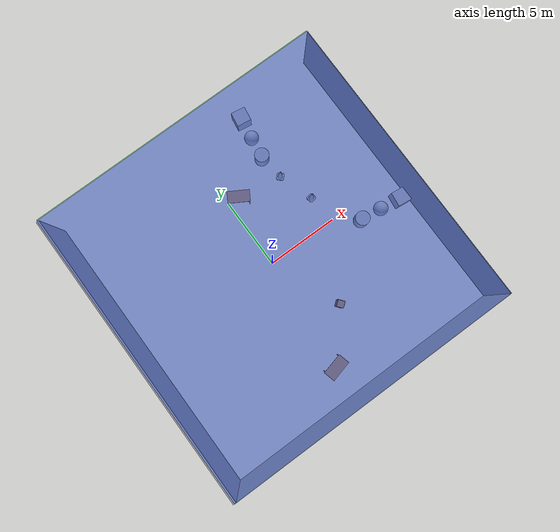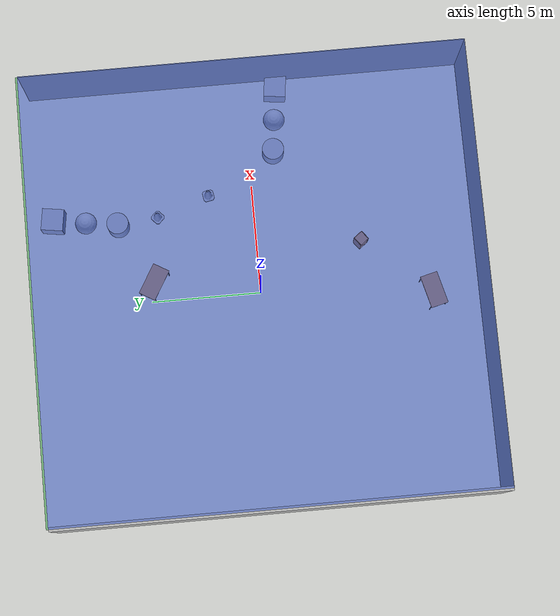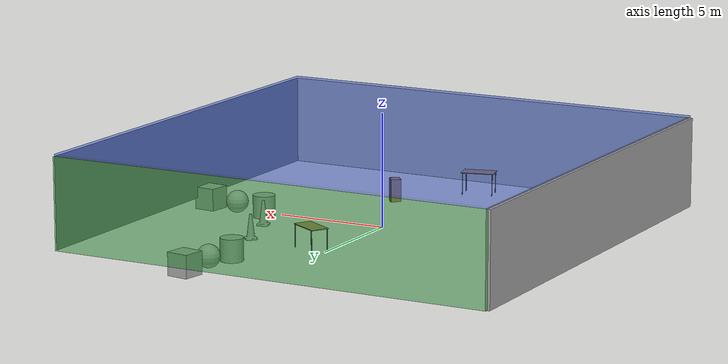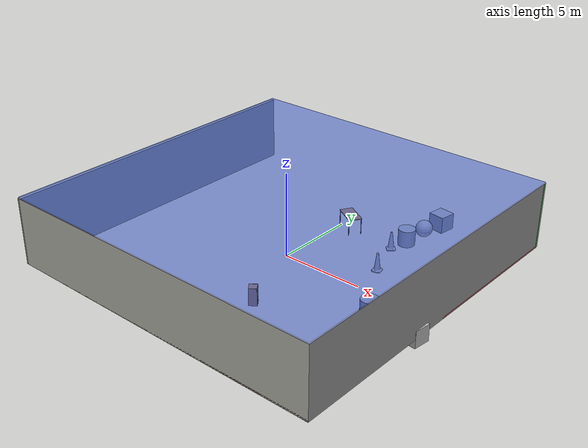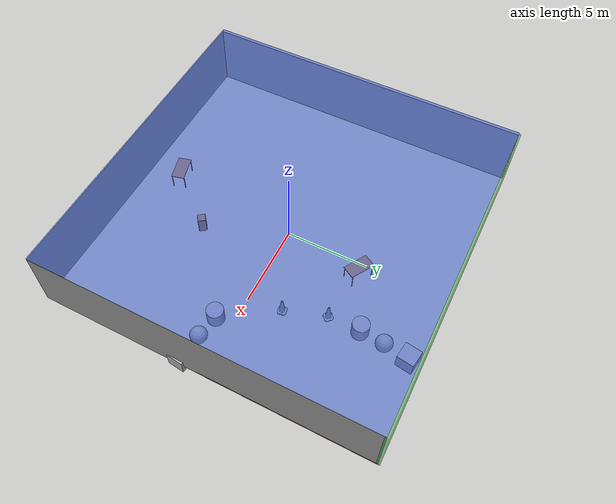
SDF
<sdf version="1.4">
 <world name="default">
  <physics type="ode">
   <max_step_size>0.001</max_step_size>
   <real_time_factor>1</real_time_factor>
   <real_time_update_rate>1000</real_time_update_rate>
   <gravity>0 0 -9.8</gravity>
  </physics>
  <scene><ambient>0.4 0.4 0.4 1</ambient><background>0.7 0.7 0.7 1</background><shadows>1</shadows></scene>
  <model name="Surrounding">
   <static>1</static>
   <link name="Ceiling">
    <collision name="Ceiling_Collision"><geometry><box><size>20 20 0.1</size></box></geometry></collision>
    <visual name="Ceiling_Visual">
     <geometry><box><size>20 20 0.1</size></box></geometry>
     <material>
      <script><uri>file://media/materials/scripts/gazebo.material</uri><name>Gazebo/BlueTransparent</name></script>
     </material>
    </visual>
    <pose>0 0 4.05 0 0 0</pose>
   </link>
   <link name="Wall_South">
    <collision name="Wall_South_Collision">
     <geometry><box><size>20 0 4</size></box></geometry>
     <pose>0 0 2 0 -0 0</pose>
    </collision>
    <visual name="Wall_South_Visual">
     <pose>0 0 2 0 -0 0</pose>
     <geometry><box><size>20 0 4</size></box></geometry>
     <material>
      <script><uri>file://media/materials/scripts/gazebo.material</uri><name>Gazebo/PaintedWall</name></script>
     </material>
    </visual>
    <velocity_decay><linear>0</linear><angular>0</angular></velocity_decay>
    <pose>0 -10 0 0 -0 0</pose>
   </link>
   <link name="Wall_East">
    <collision name="Wall_21_Collision">
     <geometry><box><size>20 0 4</size></box></geometry>
     <pose>0 0 2 0 -0 0</pose>
    </collision>
    <visual name="Wall_21_Visual">
     <pose>0 0 2 0 -0 0</pose>
     <geometry><box><size>20 0 4</size></box></geometry>
     <material>
      <script><uri>file://media/materials/scripts/gazebo.material</uri><name>Gazebo/GreyGradientSky</name></script>
     </material>
    </visual>
    <velocity_decay><linear>0</linear><angular>0</angular></velocity_decay>
    <pose>10 0 0 0 -0 1.5708</pose>
   </link>
   <link name="Wall_North">
    <collision name="Wall_22_Collision">
     <geometry><box><size>20 0.2 4</size></box></geometry>
     <pose>0 0 2 0 -0 0</pose>
    </collision>
    <visual name="Wall_22_Visual">
     <pose>0 0 2 0 -0 0</pose>
     <geometry><box><size>20 0.2 4</size></box></geometry>
     <material>
      <script><uri>file://media/materials/scripts/gazebo.material</uri><name>Gazebo/GreenTransparent</name></script>
     </material>
    </visual>
    <velocity_decay><linear>0</linear><angular>0</angular></velocity_decay>
    <pose>0 10 0 0 -0 0</pose>
   </link>
   <link name="Wall_West">
    <collision name="Wall_23_Collision">
     <geometry><box><size>20 0.2 4</size></box></geometry>
     <pose>0 0 2 0 -0 0</pose>
    </collision>
    <visual name="Wall_23_Visual">
     <pose>0 0 2 0 -0 0</pose>
     <geometry><box><size>20 0.2 4</size></box></geometry>
     <material>
      <script><uri>file://media/materials/scripts/gazebo.material</uri><name>Gazebo/CloudySky</name></script>
     </material>
    </visual>
    <velocity_decay><linear>0</linear><angular>0</angular></velocity_decay>
    <pose>-10 0 0 0 0 -1.5708</pose>
   </link>
   <link name="Ground_link">
    <collision name="collision">
     <pose>0 0 .05 0 -0 0</pose>
     <geometry><box><size>20 20 0.1</size></box></geometry>
    </collision>
    <visual name="visual">
     <pose>0 0 .05 0 -0 0</pose>
     <geometry><box><size>20 20 0.1</size></box></geometry>
     <material>
      <script><uri>file://media/materials/scripts/gazebo.material</uri><name>Gazebo/RedTransparent</name></script>
     </material>
    </visual>
   </link>
   <static>1</static>
  </model>
  <spherical_coordinates>
   <surface_model>EARTH_WGS84</surface_model>
   <latitude_deg>0</latitude_deg>
   <longitude_deg>0</longitude_deg>
   <elevation>0</elevation>
   <heading_deg>0</heading_deg>
  </spherical_coordinates>
  <light name="lightball_0" type="diffuse">
   <diffuse>0.8 0.8 0.8 1</diffuse>
   <specular>0.2 0.2 0.2 1</specular>
   <attenuation>
    <range>100</range>
    <constant>0.7</constant>
    <linear>0.01</linear>
    <quadratic>0.001</quadratic>
   </attenuation>
   <direction>-0.5 0.1 -0.9</direction>
   <pose>-3.74440221816 -7.63131538404 3.69181231283 0 0 0</pose>
  </light>
  <light name="lightball_1" type="diffuse">
   <diffuse>0.8 0.8 0.8 1</diffuse>
   <specular>0.2 0.2 0.2 1</specular>
   <attenuation>
    <range>100</range>
    <constant>0.7</constant>
    <linear>0.01</linear>
    <quadratic>0.001</quadratic>
   </attenuation>
   <direction>-0.5 0.1 -0.9</direction>
   <pose>-2.86989542638 -8.35243402407 2.24217319753 0 0 0</pose>
  </light>
  <light name="lightball_2" type="diffuse">
   <diffuse>0.8 0.8 0.8 1</diffuse>
   <specular>0.2 0.2 0.2 1</specular>
   <attenuation>
    <range>100</range>
    <constant>0.7</constant>
    <linear>0.01</linear>
    <quadratic>0.001</quadratic>
   </attenuation>
   <direction>-0.5 0.1 -0.9</direction>
   <pose>-0.00154601806068 -2.79396793922 1.25808165015 0 0 0</pose>
  </light>
  <light name="lightball_3" type="diffuse">
   <diffuse>0.8 0.8 0.8 1</diffuse>
   <specular>0.2 0.2 0.2 1</specular>
   <attenuation>
    <range>100</range>
    <constant>0.7</constant>
    <linear>0.01</linear>
    <quadratic>0.001</quadratic>
   </attenuation>
   <direction>-0.5 0.1 -0.9</direction>
   <pose>-5.35886670836 -2.93471315478 1.37691145811 0 0 0</pose>
  </light>
  <light name="lightball_4" type="diffuse">
   <diffuse>0.8 0.8 0.8 1</diffuse>
   <specular>0.2 0.2 0.2 1</specular>
   <attenuation>
    <range>100</range>
    <constant>0.7</constant>
    <linear>0.01</linear>
    <quadratic>0.001</quadratic>
   </attenuation>
   <direction>-0.5 0.1 -0.9</direction>
   <pose>1.21554565357 -6.33525970996 3.44236235513 0 0 0</pose>
  </light>
  <light name="lightball_5" type="diffuse">
   <diffuse>0.8 0.8 0.8 1</diffuse>
   <specular>0.2 0.2 0.2 1</specular>
   <attenuation>
    <range>100</range>
    <constant>0.7</constant>
    <linear>0.01</linear>
    <quadratic>0.001</quadratic>
   </attenuation>
   <direction>-0.5 0.1 -0.9</direction>
   <pose>4.90557560096 -0.857444279194 0.556697296791 0 0 0</pose>
  </light>
  <light name="lightball_6" type="diffuse">
   <diffuse>0.8 0.8 0.8 1</diffuse>
   <specular>0.2 0.2 0.2 1</specular>
   <attenuation>
    <range>100</range>
    <constant>0.7</constant>
    <linear>0.01</linear>
    <quadratic>0.001</quadratic>
   </attenuation>
   <direction>-0.5 0.1 -0.9</direction>
   <pose>-7.50888018202 -6.06314054696 1.55481309772 0 0 0</pose>
  </light>
  <light name="lightball_7" type="diffuse">
   <diffuse>0.8 0.8 0.8 1</diffuse>
   <specular>0.2 0.2 0.2 1</specular>
   <attenuation>
    <range>100</range>
    <constant>0.7</constant>
    <linear>0.01</linear>
    <quadratic>0.001</quadratic>
   </attenuation>
   <direction>-0.5 0.1 -0.9</direction>
   <pose>-2.21414060321 -0.303067941639 2.96090491581 0 0 0</pose>
  </light>
  <include><uri>model://table</uri><pose>-0.704476448342 -7.8374623654 0 0 0 0.250568004762</pose></include>
  <include><uri>model://cabinet</uri><pose>1.94185033336 -4.76862688072 0 0 0 0.651083635547</pose></include>
  <include><uri>model://table</uri><pose>0.767798233222 4.80730435803 0 0 0 2.61155440909</pose></include>
  <include>
   <uri>model://construction_cone</uri>
   <pose>4.73876528268 2.03428722751 0 0 0 0.180114154102</pose>
  </include>
  <include>
   <uri>model://construction_cone</uri>
   <pose>3.92190916798 4.45029797035 0 0 0 0.77065862802</pose>
  </include>
  <include>
   <uri>model://textured_shapes</uri>
   <pose>3.94586451964 7.78743247765 0 0 0 2.99588558801</pose>
  </include>
  <include>
   <uri>model://textured_shapes</uri>
   <pose>8.08630128861 -1.31439619824 0 0 0 1.45453833599</pose>
  </include>
 </world>
</sdf>

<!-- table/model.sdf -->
<sdf version="1.5">
  <model name="table">
    <static>true</static>
    <link name="link">
      <collision name="surface">
        <pose>0 0 1.0 0 0 0</pose>
        <geometry>
          <box>
            <size>1.5 0.8 0.03</size>
          </box>
        </geometry>
        <surface>
          <friction>
            <ode>
              <mu>0.6</mu>
              <mu2>0.6</mu2>
            </ode>
          </friction>
        </surface>
      </collision>
      <visual name="visual1">
        <pose>0 0 1.0 0 0 0</pose>
        <geometry>
          <box>
            <size>1.5 0.8 0.03</size>
          </box>
        </geometry>
        <material>
          <script>
            <uri>model://media/materials/scripts/gazebo.material</uri>
            <name>Gazebo/Wood</name>
          </script>
        </material>
      </visual>
      <collision name="front_left_leg">
        <pose>0.68 0.38 0.5 0 0 0</pose>
        <geometry>
          <cylinder>
            <radius>0.02</radius>
            <length>1.0</length>
          </cylinder>
        </geometry>
      </collision>
      <visual name="front_left_leg">
        <pose>0.68 0.38 0.5 0 0 0</pose>
        <geometry>
          <cylinder>
            <radius>0.02</radius>
            <length>1.0</length>
          </cylinder>
        </geometry>
        <material>
          <script>
            <uri>model://media/materials/scripts/gazebo.material</uri>
            <name>Gazebo/Grey</name>
          </script>
        </material>
      </visual>
      <collision name="front_right_leg">
        <pose>0.68 -0.38 0.5 0 0 0</pose>
        <geometry>
          <cylinder>
            <radius>0.02</radius>
            <length>1.0</length>
          </cylinder>
        </geometry>
      </collision>
      <visual name="front_right_leg">
        <pose>0.68 -0.38 0.5 0 0 0</pose>
        <geometry>
          <cylinder>
            <radius>0.02</radius>
            <length>1.0</length>
          </cylinder>
        </geometry>
        <material>
          <script>
            <uri>model://media/materials/scripts/gazebo.material</uri>
            <name>Gazebo/Grey</name>
          </script>
        </material>
      </visual>
      <collision name="back_right_leg">
        <pose>-0.68 -0.38 0.5 0 0 0</pose>
        <geometry>
          <cylinder>
            <radius>0.02</radius>
            <length>1.0</length>
          </cylinder>
        </geometry>
      </collision>
      <visual name="back_right_leg">
        <pose>-0.68 -0.38 0.5 0 0 0</pose>
        <geometry>
          <cylinder>
            <radius>0.02</radius>
            <length>1.0</length>
          </cylinder>
        </geometry>
        <material>
          <script>
            <uri>model://media/materials/scripts/gazebo.material</uri>
            <name>Gazebo/Grey</name>
          </script>
        </material>
      </visual>
      <collision name="back_left_leg">
        <pose>-0.68 0.38 0.5 0 0 0</pose>
        <geometry>
          <cylinder>
            <radius>0.02</radius>
            <length>1.0</length>
          </cylinder>
        </geometry>
      </collision>
      <visual name="back_left_leg">
        <pose>-0.68 0.38 0.5 0 0 0</pose>
        <geometry>
          <cylinder>
            <radius>0.02</radius>
            <length>1.0</length>
          </cylinder>
        </geometry>
        <material>
          <script>
            <uri>model://media/materials/scripts/gazebo.material</uri>
            <name>Gazebo/Grey</name>
          </script>
        </material>
      </visual>
    </link>
  </model>
</sdf>

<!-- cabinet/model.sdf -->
<sdf version="1.5">
  <model name="cabinet">
    <static>true</static>
    <link name="cabinet_bottom_plate">
      <inertial>
        <pose>0 0 -1 0 0 0</pose>
        <inertia>
          <ixx>2.050000</ixx>
          <ixy>0</ixy>
          <ixz>0</ixz>
          <iyy>2.050000</iyy>
          <iyz>0</iyz>
          <izz>2.050000</izz>
        </inertia>
        <mass>25.000000</mass>
      </inertial>
      <collision name="cabinet_bottom_plate_geom">
        <pose>0 0 0.010000 0 0 0</pose>
        <geometry>
          <box>
            <size>0.450000 0.450000 0.020000</size>
          </box>
        </geometry>
      </collision>
      <visual name="cabinet_bottom_plate_geom_visual">
        <pose>0 0 0.010000 0 0 0</pose>
        <geometry>
          <box>
            <size>0.450000 0.450000 0.020000</size>
          </box>
        </geometry>
        <material>
          <script>
            <uri>model://media/materials/scripts/gazebo.material</uri>
            <name>Gazebo/Wood</name>
          </script>
        </material>
      </visual>
      <collision name="cabinet_bottom_plate_geom_cabinet_back_plate">
        <pose>0.235000 0 0.510000 0 0 0</pose>
        <geometry>
          <box>
            <size>0.020000 0.450000 1.020000</size>
          </box>
        </geometry>
      </collision>
      <visual name="cabinet_bottom_plate_geom_cabinet_back_plate_visual">
        <pose>0.235000 0 0.510000 0 0 0</pose>
        <geometry>
          <box>
            <size>0.020000 0.450000 1.020000</size>
          </box>
        </geometry>
        <material>
          <script>
            <uri>model://media/materials/scripts/gazebo.material</uri>
            <name>Gazebo/Wood</name>
          </script>
        </material>
      </visual>
      <collision name="cabinet_bottom_plate_geom_cabinet_left_plate">
        <pose>0 0.235000 0.510000 0 0 0</pose>
        <geometry>
          <box>
            <size>0.450000 0.020000 1.020000</size>
          </box>
        </geometry>
      </collision>
      <visual name="cabinet_bottom_plate_geom_cabinet_left_plate_visual">
        <pose>0 0.235000 0.510000 0 0 0</pose>
        <geometry>
          <box>
            <size>0.450000 0.020000 1.020000</size>
          </box>
        </geometry>
        <material>
          <script>
            <uri>model://media/materials/scripts/gazebo.material</uri>
            <name>Gazebo/Wood</name>
          </script>
        </material>
      </visual>
      <collision name="cabinet_bottom_plate_geom_cabinet_middle_plate">
        <pose>0 0 0.510000 0 0 0</pose>
        <geometry>
          <box>
            <size>0.450000 0.450000 0.020000</size>
          </box>
        </geometry>
      </collision>
      <visual name="cabinet_bottom_plate_geom_cabinet_middle_plate_visual">
        <pose>0 0 0.510000 0 0 0</pose>
        <geometry>
          <box>
            <size>0.450000 0.450000 0.020000</size>
          </box>
        </geometry>
        <material>
          <script>
            <uri>model://media/materials/scripts/gazebo.material</uri>
            <name>Gazebo/Wood</name>
          </script>
        </material>
      </visual>
      <collision name="cabinet_bottom_plate_geom_cabinet_right_plate">
        <pose>0 -0.235000 0.510000 0 0 0</pose>
        <geometry>
          <box>
            <size>0.450000 0.020000 1.020000</size>
          </box>
        </geometry>
      </collision>
      <visual name="cabinet_bottom_plate_geom_cabinet_right_plate_visual">
        <pose>0 -0.235000 0.510000 0 0 0</pose>
        <geometry>
          <box>
            <size>0.450000 0.020000 1.020000</size>
          </box>
        </geometry>
        <material>
          <script>
            <uri>model://media/materials/scripts/gazebo.material</uri>
            <name>Gazebo/Wood</name>
          </script>
        </material>
      </visual>
      <collision name="cabinet_bottom_plate_geom_cabinet_top_plate">
        <pose>0 0 1.010000 0 0 0</pose>
        <geometry>
          <box>
            <size>0.450000 0.450000 0.020000</size>
          </box>
        </geometry>
      </collision>
      <visual name="cabinet_bottom_plate_geom_cabinet_top_plate_visual">
        <pose>0 0 1.010000 0 0 0</pose>
        <geometry>
          <box>
            <size>0.450000 0.450000 0.020000</size>
          </box>
        </geometry>
        <material>
          <script>
            <uri>model://media/materials/scripts/gazebo.material</uri>
            <name>Gazebo/Wood</name>
          </script>
        </material>
      </visual>
    </link>
  </model>
</sdf>

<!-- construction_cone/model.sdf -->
<sdf version="1.5">
  <model name="Construction Cone">
    <link name="link">
      <collision name="collision">
        <geometry>
          <mesh>
            <scale>10 10 10</scale>
            <uri>file://isr-testbed/construction_cone/meshes/construction_cone.dae</uri>
          </mesh>
        </geometry>
      </collision>
      <visual name="visual">
        <geometry>
          <mesh>
            <scale>10 10 10</scale>
            <uri>file://isr-testbed/construction_cone/meshes/construction_cone.dae</uri>
          </mesh>
        </geometry>
      </visual>
    </link>
  </model>
</sdf>

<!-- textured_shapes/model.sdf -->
<sdf version="1.6">
  <model name="textured_shapes">
    <pose>0 0 0.5 0 0 0</pose>
    <link name="box">
      <pose>0 -1.5 0 0 0 0</pose>
      <collision name="collision">
        <geometry>
          <box>
            <size>1 1 1</size>
          </box>
        </geometry>
      </collision>
      <visual name="visual">
        <geometry>
          <box>
            <size>1 1 1</size>
          </box>
        </geometry>
        <material>
          <script>
            <uri>model://../model_source/models/textured_shapes/materials/scripts</uri>
            <uri>model://../model_source/models/textured_shapes/materials/textures</uri>
            <name>TexturedShape/Squares</name>
          </script>
        </material>
      </visual>
    </link>
    <link name="sphere">
      <collision name="collision">
        <geometry>
          <sphere>
            <radius>0.5</radius>
          </sphere>
        </geometry>
      </collision>
      <visual name="visual">
        <geometry>
          <sphere>
            <radius>0.5</radius>
          </sphere>
        </geometry>
        <material>
          <script>
            <uri>model://../model_source/models/textured_shapes/materials/scripts</uri>
            <uri>model://../model_source/models/textured_shapes/materials/textures</uri>
            <name>TexturedShape/Squares</name>
          </script>
        </material>
      </visual>
    </link>
    <link name="cylinder">
      <pose>0 1.5 0 0 0 0</pose>
      <collision name="collision">
        <geometry>
          <cylinder>
            <radius>0.5</radius>
            <length>1</length>
          </cylinder>
        </geometry>
      </collision>
      <visual name="visual">
        <geometry>
          <cylinder>
            <radius>0.5</radius>
            <length>1</length>
          </cylinder>
        </geometry>
        <material>
          <script>
            <uri>model://../model_source/models/textured_shapes/materials/scripts</uri>
            <uri>model://../model_source/models/textured_shapes/materials/textures</uri>
            <name>TexturedShape/Squares</name>
          </script>
        </material>
      </visual>
    </link>
  </model>
</sdf>
